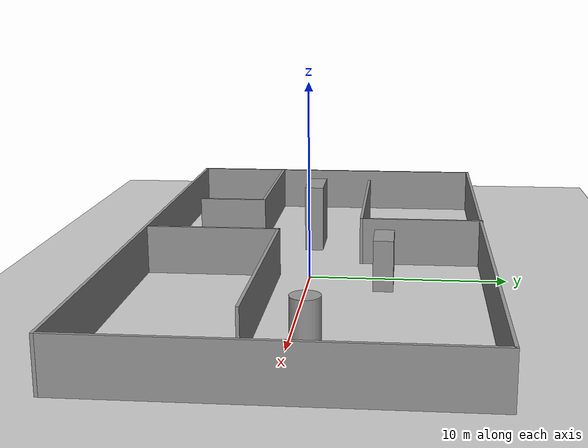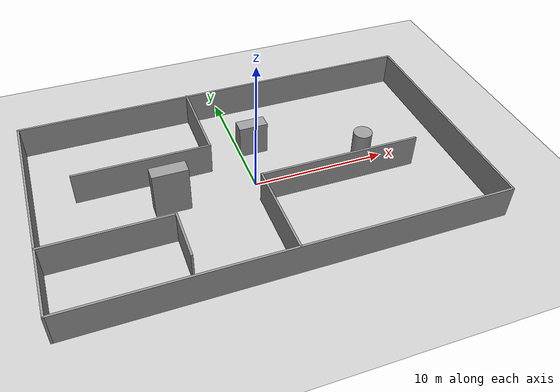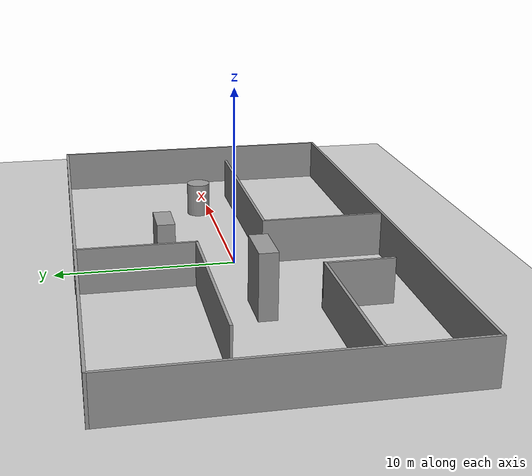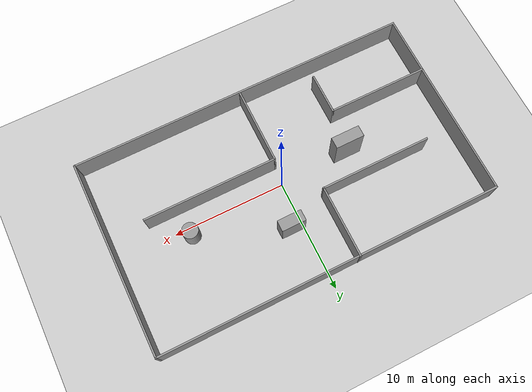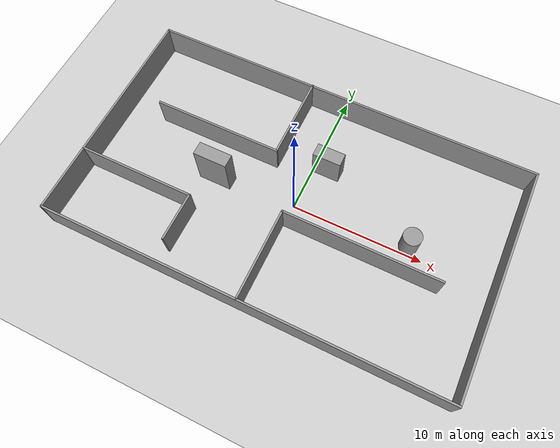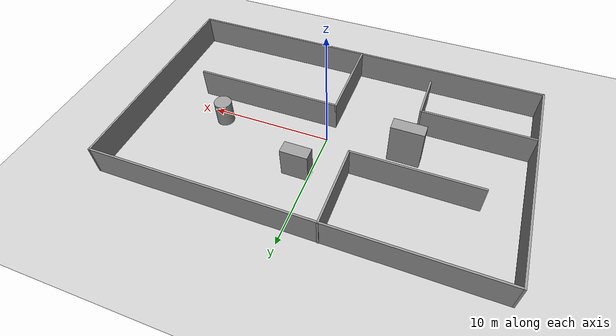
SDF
<sdf version="1.7">
 <world name="default">
  <light name="sun" type="directional">
   <pose>0 0 10 0 -0 0</pose>
   <diffuse>0.8 0.8 0.8 1</diffuse>
   <specular>0.2 0.2 0.2 1</specular>
   <attenuation>
    <range>1000</range>
    <constant>0.9</constant>
    <linear>0.01</linear>
    <quadratic>0.001</quadratic>
   </attenuation>
   <direction>-0.5 0.1 -0.9</direction>
   <spot><inner_angle>0</inner_angle><outer_angle>0</outer_angle><falloff>0</falloff></spot>
  </light>
  <model name="ground_plane">
   <static>1</static>
   <link name="link">
    <collision name="collision">
     <geometry><plane><normal>0 0 1</normal><size>100 100</size></plane></geometry>
     <surface><friction><ode><mu>100</mu><mu2>50</mu2></ode></friction></surface>
    </collision>
    <visual name="visual">
     <cast_shadows>0</cast_shadows>
     <geometry><plane><normal>0 0 1</normal><size>100 100</size></plane></geometry>
     <material>
      <script><uri>file://media/materials/scripts/gazebo.material</uri><name>Gazebo/Grey</name></script>
     </material>
    </visual>
   </link>
  </model>
  <gravity>0 0 -9.8</gravity>
  <magnetic_field>6e-06 2.3e-05 -4.2e-05</magnetic_field>
  <atmosphere type="adiabatic"/>
  <physics type="ode">
   <max_step_size>0.001</max_step_size>
   <real_time_factor>1</real_time_factor>
   <real_time_update_rate>1000</real_time_update_rate>
  </physics>
  <scene><ambient>0.4 0.4 0.4 1</ambient><background>0.7 0.7 0.7 1</background><shadows>1</shadows></scene>
  <audio><device>default</device></audio>
  <spherical_coordinates>
   <surface_model>EARTH_WGS84</surface_model>
   <latitude_deg>0</latitude_deg>
   <longitude_deg>0</longitude_deg>
   <elevation>0</elevation>
   <heading_deg>0</heading_deg>
  </spherical_coordinates>
  <model name="room">
   <pose>-0.184512 0.162434 0 0 -0 0</pose>
   <link name="Wall_10">
    <collision name="Wall_10_Collision">
     <geometry><box><size>6.5 0.15 2.5</size></box></geometry>
     <pose>0 0 1.25 0 -0 0</pose>
    </collision>
    <visual name="Wall_10_Visual">
     <pose>0 0 1.25 0 -0 0</pose>
     <geometry><box><size>6.5 0.15 2.5</size></box></geometry>
     <material>
      <script><uri>file://media/materials/scripts/gazebo.material</uri><name>Gazebo/Grey</name></script>
      <ambient>1 1 1 1</ambient>
     </material>
     <meta><layer>0</layer></meta>
    </visual>
    <pose>-2.45272 5.51867 0 0 -0 -1.5708</pose>
   </link>
   <link name="Wall_11">
    <collision name="Wall_11_Collision">
     <geometry><box><size>10 0.15 2.5</size></box></geometry>
     <pose>0 0 1.25 0 -0 0</pose>
    </collision>
    <visual name="Wall_11_Visual">
     <pose>0 0 1.25 0 -0 0</pose>
     <geometry><box><size>10 0.15 2.5</size></box></geometry>
     <material>
      <script><uri>file://media/materials/scripts/gazebo.material</uri><name>Gazebo/Grey</name></script>
      <ambient>1 1 1 1</ambient>
     </material>
     <meta><layer>0</layer></meta>
    </visual>
    <pose>-7.37772 2.34367 0 0 -0 3.14159</pose>
   </link>
   <link name="Wall_13">
    <collision name="Wall_13_Collision">
     <geometry><box><size>9 0.15 2.5</size></box></geometry>
     <pose>0 0 1.25 0 -0 0</pose>
    </collision>
    <visual name="Wall_13_Visual">
     <pose>0 0 1.25 0 -0 0</pose>
     <geometry><box><size>9 0.15 2.5</size></box></geometry>
     <material>
      <script><uri>file://media/materials/scripts/gazebo.material</uri><name>Gazebo/Grey</name></script>
      <ambient>1 1 1 1</ambient>
     </material>
     <meta><layer>0</layer></meta>
    </visual>
    <pose>-10.8329 -3.50199 0 0 -0 0</pose>
   </link>
   <link name="Wall_14">
    <collision name="Wall_14_Collision">
     <geometry><box><size>3.75 0.15 2.5</size></box></geometry>
     <pose>0 0 1.25 0 -0 0</pose>
    </collision>
    <visual name="Wall_14_Visual">
     <pose>0 0 1.25 0 -0 0</pose>
     <geometry><box><size>3.75 0.15 2.5</size></box></geometry>
     <material>
      <script><uri>file://media/materials/scripts/gazebo.material</uri><name>Gazebo/Grey</name></script>
      <ambient>1 1 1 1</ambient>
     </material>
     <meta><layer>0</layer></meta>
    </visual>
    <pose>-6.40785 -5.30199 0 0 -0 -1.5708</pose>
   </link>
   <link name="Wall_16">
    <collision name="Wall_16_Collision">
     <geometry><box><size>7 0.15 2.5</size></box></geometry>
     <pose>0 0 1.25 0 -0 0</pose>
    </collision>
    <visual name="Wall_16_Visual">
     <pose>0 0 1.25 0 -0 0</pose>
     <geometry><box><size>7 0.15 2.5</size></box></geometry>
     <material>
      <script><uri>file://media/materials/scripts/gazebo.material</uri><name>Gazebo/Grey</name></script>
      <ambient>1 1 1 1</ambient>
     </material>
     <meta><layer>0</layer></meta>
    </visual>
    <pose>0.034359 -5.21485 0 0 -0 1.5708</pose>
   </link>
   <link name="Wall_17">
    <collision name="Wall_17_Collision">
     <geometry><box><size>12 0.15 2.5</size></box></geometry>
     <pose>0 0 1.25 0 -0 0</pose>
    </collision>
    <visual name="Wall_17_Visual">
     <pose>0 0 1.25 0 -0 0</pose>
     <geometry><box><size>12 0.15 2.5</size></box></geometry>
     <material>
      <script><uri>file://media/materials/scripts/gazebo.material</uri><name>Gazebo/Grey</name></script>
      <ambient>1 1 1 1</ambient>
     </material>
     <meta><layer>0</layer></meta>
    </visual>
    <pose>5.95936 -1.78985 0 0 -0 0</pose>
   </link>
   <link name="Wall_2">
    <collision name="Wall_2_Collision">
     <geometry><box><size>17.5 0.15 2.5</size></box></geometry>
     <pose>0 0 1.25 0 -0 0</pose>
    </collision>
    <visual name="Wall_2_Visual">
     <pose>0 0 1.25 0 -0 0</pose>
     <geometry><box><size>17.5 0.15 2.5</size></box></geometry>
     <material>
      <script><uri>file://media/materials/scripts/gazebo.material</uri><name>Gazebo/Grey</name></script>
      <ambient>1 1 1 1</ambient>
     </material>
     <meta><layer>0</layer></meta>
    </visual>
    <pose>-15.3 -0.018665 0 0 -0 -1.5708</pose>
   </link>
   <link name="Wall_4">
    <collision name="Wall_4_Collision">
     <geometry><box><size>30.75 0.15 2.5</size></box></geometry>
     <pose>0 0 1.25 0 -0 0</pose>
    </collision>
    <visual name="Wall_4_Visual">
     <pose>0 0 1.25 0 -0 0</pose>
     <geometry><box><size>30.75 0.15 2.5</size></box></geometry>
     <material>
      <script><uri>file://media/materials/scripts/gazebo.material</uri><name>Gazebo/Grey</name></script>
      <ambient>1 1 1 1</ambient>
     </material>
     <meta><layer>0</layer></meta>
    </visual>
    <pose>-0 8.65633 0 0 -0 0</pose>
   </link>
   <link name="Wall_5">
    <collision name="Wall_5_Collision">
     <geometry><box><size>17.5 0.15 2.5</size></box></geometry>
     <pose>0 0 1.25 0 -0 0</pose>
    </collision>
    <visual name="Wall_5_Visual">
     <pose>0 0 1.25 0 -0 0</pose>
     <geometry><box><size>17.5 0.15 2.5</size></box></geometry>
     <material>
      <script><uri>file://media/materials/scripts/gazebo.material</uri><name>Gazebo/Grey</name></script>
      <ambient>1 1 1 1</ambient>
     </material>
     <meta><layer>0</layer></meta>
    </visual>
    <pose>15.3 -0.018665 0 0 -0 -1.5708</pose>
   </link>
   <link name="Wall_6">
    <collision name="Wall_6_Collision">
     <geometry><box><size>30.75 0.15 2.5</size></box></geometry>
     <pose>0 0 1.25 0 -0 0</pose>
    </collision>
    <visual name="Wall_6_Visual">
     <pose>0 0 1.25 0 -0 0</pose>
     <geometry><box><size>30.75 0.15 2.5</size></box></geometry>
     <material>
      <script><uri>file://media/materials/scripts/gazebo.material</uri><name>Gazebo/Grey</name></script>
      <ambient>1 1 1 1</ambient>
     </material>
     <meta><layer>0</layer></meta>
    </visual>
    <pose>-0 -8.69366 0 0 -0 3.14159</pose>
   </link>
   <static>1</static>
  </model>
  <model name="unit_box">
   <pose>0.997128 3.8119 1.28617 0 4e-06 -2.6e-05</pose>
   <link name="link">
    <inertial>
     <mass>1</mass>
     <inertia>
      <ixx>0.166667</ixx>
      <ixy>0</ixy>
      <ixz>0</ixz>
      <iyy>0.166667</iyy>
      <iyz>0</iyz>
      <izz>0.166667</izz>
     </inertia>
    </inertial>
    <collision name="collision"><geometry><box><size>2.17043 1 2.57233</size></box></geometry></collision>
    <visual name="visual">
     <geometry><box><size>2.17043 1 2.57233</size></box></geometry>
     <material>
      <script><name>Gazebo/Grey</name><uri>file://media/materials/scripts/gazebo.material</uri></script>
     </material>
    </visual>
   </link>
  </model>
  <model name="unit_cylinder">
   <pose>8.7285 0.712996 1.00239 -0 -0 -1e-06</pose>
   <link name="link">
    <inertial>
     <mass>1</mass>
     <inertia><ixx>0.145833</ixx><ixy>0</ixy><ixz>0</ixz><iyy>0.145833</iyy><iyz>0</iyz><izz>0.125</izz></inertia>
    </inertial>
    <collision name="collision">
     <geometry><cylinder><radius>0.70472</radius><length>2.00478</length></cylinder></geometry>
    </collision>
    <visual name="visual">
     <geometry><cylinder><radius>0.70472</radius><length>2.00478</length></cylinder></geometry>
     <material>
      <script><name>Gazebo/Grey</name><uri>file://media/materials/scripts/gazebo.material</uri></script>
     </material>
    </visual>
   </link>
  </model>
  <model name="unit_box_0">
   <pose>-6.26991 -0.264788 1.79777 0 -1e-06 -0.000208</pose>
   <link name="link">
    <inertial>
     <mass>1</mass>
     <inertia>
      <ixx>0.166667</ixx>
      <ixy>0</ixy>
      <ixz>0</ixz>
      <iyy>0.166667</iyy>
      <iyz>0</iyz>
      <izz>0.166667</izz>
     </inertia>
    </inertial>
    <collision name="collision"><geometry><box><size>2.54607 1 3.59554</size></box></geometry></collision>
    <visual name="visual">
     <geometry><box><size>2.54607 1 3.59554</size></box></geometry>
     <material>
      <script><name>Gazebo/Grey</name><uri>file://media/materials/scripts/gazebo.material</uri></script>
     </material>
    </visual>
   </link>
  </model>
 </world>
</sdf>
